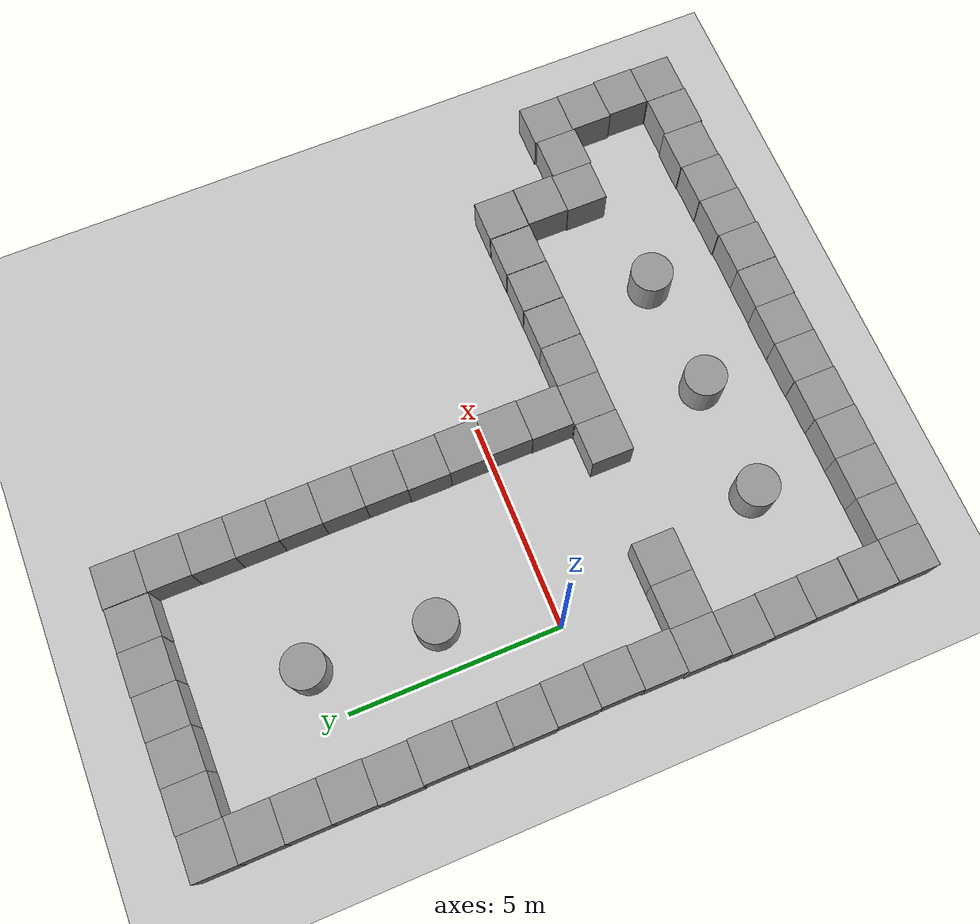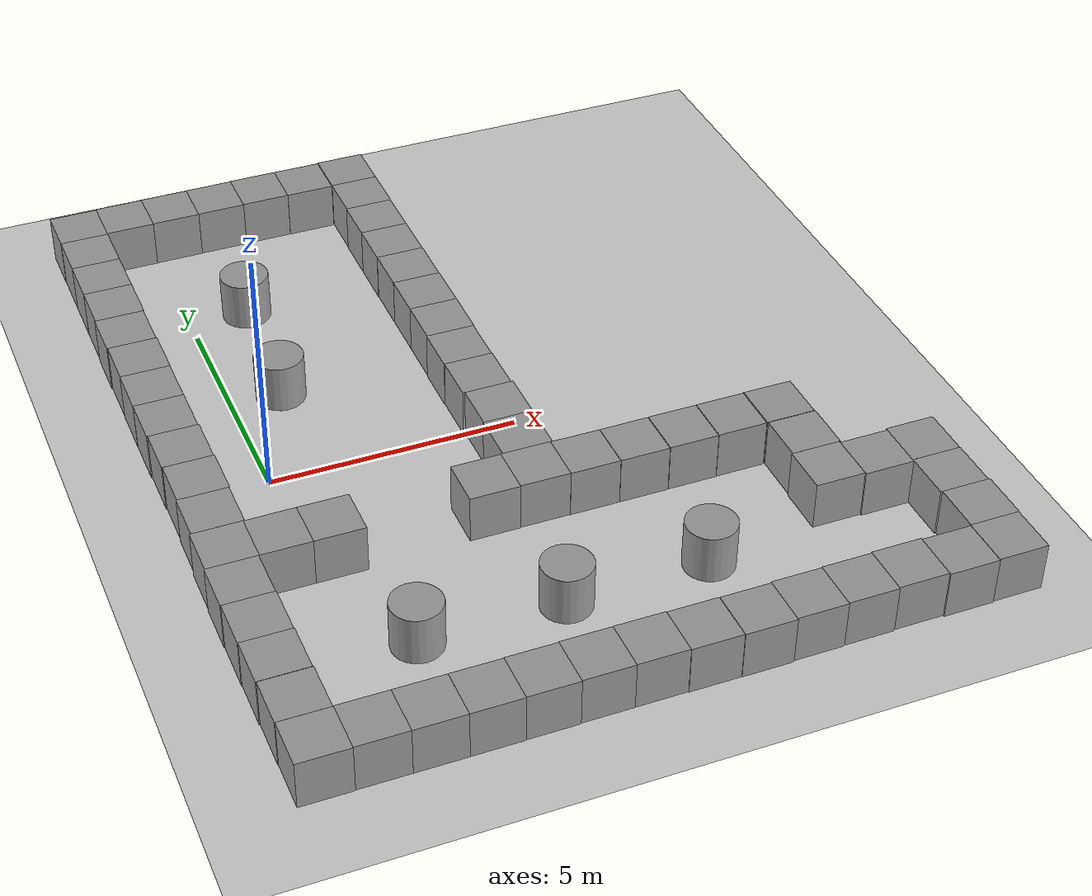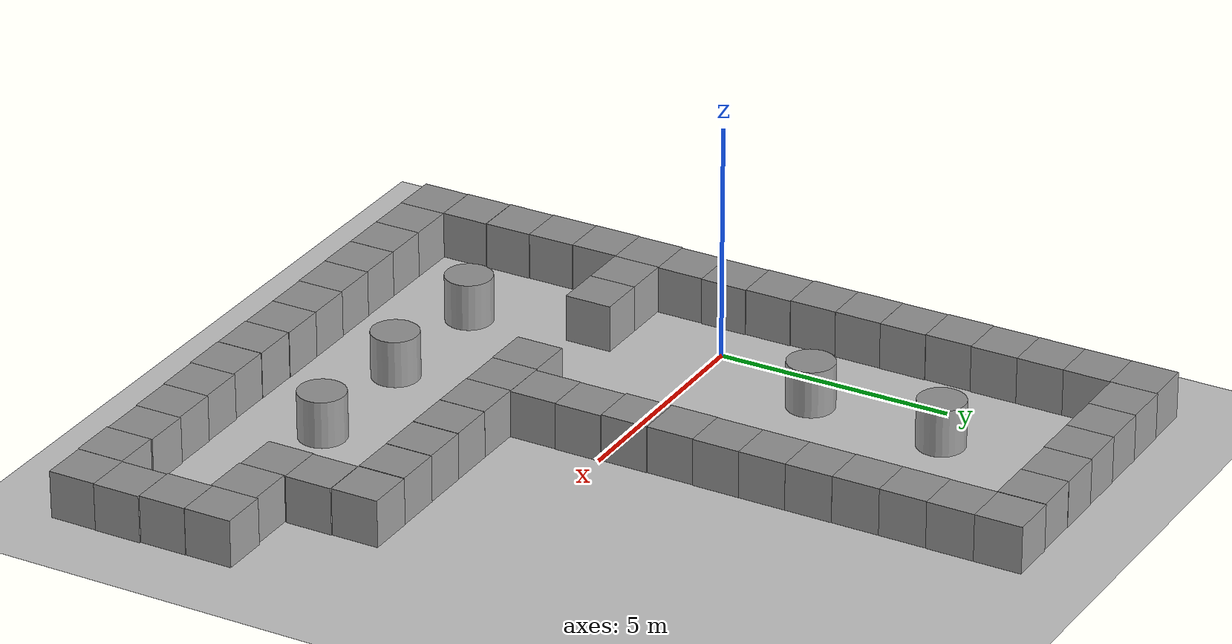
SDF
<sdf version="1.7">
 <world name="default">
  <light name="sun" type="directional">
   <pose>0 0 10 0 -0 0</pose>
   <diffuse>0.8 0.8 0.8 1</diffuse>
   <specular>0.2 0.2 0.2 1</specular>
   <attenuation>
    <range>1000</range>
    <constant>0.9</constant>
    <linear>0.01</linear>
    <quadratic>0.001</quadratic>
   </attenuation>
   <direction>-0.5 0.1 -0.9</direction>
   <spot><inner_angle>0</inner_angle><outer_angle>0</outer_angle><falloff>0</falloff></spot>
  </light>
  <model name="ground_plane">
   <static>1</static>
   <link name="link">
    <collision name="collision">
     <geometry><plane><normal>0 0 1</normal><size>100 100</size></plane></geometry>
     <surface>
      <contact><collide_bitmask>65535</collide_bitmask></contact>
      <friction><ode><mu>100</mu><mu2>50</mu2></ode></friction>
     </surface>
    </collision>
    <visual name="visual">
     <cast_shadows>0</cast_shadows>
     <geometry><plane><normal>0 0 1</normal><size>100 100</size></plane></geometry>
     <material>
      <script><uri>file://media/materials/scripts/gazebo.material</uri><name>Gazebo/Grey</name></script>
     </material>
    </visual>
   </link>
  </model>
  <gravity>0 0 -9.8</gravity>
  <magnetic_field>6e-06 2.3e-05 -4.2e-05</magnetic_field>
  <atmosphere type="adiabatic"/>
  <physics type="ode">
   <max_step_size>0.001</max_step_size>
   <real_time_factor>1</real_time_factor>
   <real_time_update_rate>1000</real_time_update_rate>
  </physics>
  <scene><ambient>0.4 0.4 0.4 1</ambient><background>0.7 0.7 0.7 1</background><shadows>1</shadows></scene>
  <audio><device>default</device></audio>
  <spherical_coordinates>
   <surface_model>EARTH_WGS84</surface_model>
   <latitude_deg>0</latitude_deg>
   <longitude_deg>0</longitude_deg>
   <elevation>0</elevation>
   <heading_deg>0</heading_deg>
  </spherical_coordinates>
  <model name="unit_box">
   <pose>-1.51063 -0.521096 0.5 0 -0 0.000656</pose>
   <link name="link">
    <inertial>
     <mass>1</mass>
     <inertia>
      <ixx>0.166667</ixx>
      <ixy>0</ixy>
      <ixz>0</ixz>
      <iyy>0.166667</iyy>
      <iyz>0</iyz>
      <izz>0.166667</izz>
     </inertia>
    </inertial>
    <collision name="collision"><geometry><box><size>1 1 1</size></box></geometry></collision>
    <visual name="visual">
     <geometry><box><size>1 1 1</size></box></geometry>
     <material>
      <script><name>Gazebo/Grey</name><uri>file://media/materials/scripts/gazebo.material</uri></script>
     </material>
    </visual>
   </link>
  </model>
  <model name="unit_box_0">
   <pose>-1.52804 0.478997 0.5 -1e-06 -0 0.000483</pose>
   <link name="link">
    <inertial>
     <mass>1</mass>
     <inertia>
      <ixx>0.166667</ixx>
      <ixy>0</ixy>
      <ixz>0</ixz>
      <iyy>0.166667</iyy>
      <iyz>0</iyz>
      <izz>0.166667</izz>
     </inertia>
    </inertial>
    <collision name="collision"><geometry><box><size>1 1 1</size></box></geometry></collision>
    <visual name="visual">
     <geometry><box><size>1 1 1</size></box></geometry>
     <material>
      <script><name>Gazebo/Grey</name><uri>file://media/materials/scripts/gazebo.material</uri></script>
     </material>
    </visual>
   </link>
  </model>
  <model name="unit_box_0_clone">
   <pose>-1.54944 1.47899 0.5 0 -0 0.000474</pose>
   <link name="link">
    <inertial>
     <mass>1</mass>
     <inertia>
      <ixx>0.166667</ixx>
      <ixy>0</ixy>
      <ixz>0</ixz>
      <iyy>0.166667</iyy>
      <iyz>0</iyz>
      <izz>0.166667</izz>
     </inertia>
    </inertial>
    <collision name="collision"><geometry><box><size>1 1 1</size></box></geometry></collision>
    <visual name="visual">
     <geometry><box><size>1 1 1</size></box></geometry>
     <material>
      <script><name>Gazebo/Grey</name><uri>file://media/materials/scripts/gazebo.material</uri></script>
     </material>
    </visual>
   </link>
  </model>
  <model name="unit_box_0_clone_0">
   <pose>-1.55284 2.479 0.5 -1e-06 -0 0.000463</pose>
   <link name="link">
    <inertial>
     <mass>1</mass>
     <inertia>
      <ixx>0.166667</ixx>
      <ixy>0</ixy>
      <ixz>0</ixz>
      <iyy>0.166667</iyy>
      <iyz>0</iyz>
      <izz>0.166667</izz>
     </inertia>
    </inertial>
    <collision name="collision"><geometry><box><size>1 1 1</size></box></geometry></collision>
    <visual name="visual">
     <geometry><box><size>1 1 1</size></box></geometry>
     <material>
      <script><name>Gazebo/Grey</name><uri>file://media/materials/scripts/gazebo.material</uri></script>
     </material>
    </visual>
   </link>
  </model>
  <model name="unit_box_0_clone_1">
   <pose>-1.54624 3.47911 0.5 0 -0 0.000237</pose>
   <link name="link">
    <inertial>
     <mass>1</mass>
     <inertia>
      <ixx>0.166667</ixx>
      <ixy>0</ixy>
      <ixz>0</ixz>
      <iyy>0.166667</iyy>
      <iyz>0</iyz>
      <izz>0.166667</izz>
     </inertia>
    </inertial>
    <collision name="collision"><geometry><box><size>1 1 1</size></box></geometry></collision>
    <visual name="visual">
     <geometry><box><size>1 1 1</size></box></geometry>
     <material>
      <script><name>Gazebo/Grey</name><uri>file://media/materials/scripts/gazebo.material</uri></script>
     </material>
    </visual>
   </link>
  </model>
  <model name="unit_box_0_clone_2">
   <pose>-1.5633 4.47916 0.5 0 -0 0.000141</pose>
   <link name="link">
    <inertial>
     <mass>1</mass>
     <inertia>
      <ixx>0.166667</ixx>
      <ixy>0</ixy>
      <ixz>0</ixz>
      <iyy>0.166667</iyy>
      <iyz>0</iyz>
      <izz>0.166667</izz>
     </inertia>
    </inertial>
    <collision name="collision"><geometry><box><size>1 1 1</size></box></geometry></collision>
    <visual name="visual">
     <geometry><box><size>1 1 1</size></box></geometry>
     <material>
      <script><name>Gazebo/Grey</name><uri>file://media/materials/scripts/gazebo.material</uri></script>
     </material>
    </visual>
   </link>
  </model>
  <model name="unit_box_0_clone_3">
   <pose>-1.54839 5.47918 0.5 0 -0 0.000113</pose>
   <link name="link">
    <inertial>
     <mass>1</mass>
     <inertia>
      <ixx>0.166667</ixx>
      <ixy>0</ixy>
      <ixz>0</ixz>
      <iyy>0.166667</iyy>
      <iyz>0</iyz>
      <izz>0.166667</izz>
     </inertia>
    </inertial>
    <collision name="collision"><geometry><box><size>1 1 1</size></box></geometry></collision>
    <visual name="visual">
     <geometry><box><size>1 1 1</size></box></geometry>
     <material>
      <script><name>Gazebo/Grey</name><uri>file://media/materials/scripts/gazebo.material</uri></script>
     </material>
    </visual>
   </link>
  </model>
  <model name="unit_box_0_clone_4">
   <pose>-1.54942 6.47919 0.5 0 -0 0.000113</pose>
   <link name="link">
    <inertial>
     <mass>1</mass>
     <inertia>
      <ixx>0.166667</ixx>
      <ixy>0</ixy>
      <ixz>0</ixz>
      <iyy>0.166667</iyy>
      <iyz>0</iyz>
      <izz>0.166667</izz>
     </inertia>
    </inertial>
    <collision name="collision"><geometry><box><size>1 1 1</size></box></geometry></collision>
    <visual name="visual">
     <geometry><box><size>1 1 1</size></box></geometry>
     <material>
      <script><name>Gazebo/Grey</name><uri>file://media/materials/scripts/gazebo.material</uri></script>
     </material>
    </visual>
   </link>
  </model>
  <model name="unit_box_0_clone_5">
   <pose>-1.54977 7.47919 0.5 0 -0 0.000113</pose>
   <link name="link">
    <inertial>
     <mass>1</mass>
     <inertia>
      <ixx>0.166667</ixx>
      <ixy>0</ixy>
      <ixz>0</ixz>
      <iyy>0.166667</iyy>
      <iyz>0</iyz>
      <izz>0.166667</izz>
     </inertia>
    </inertial>
    <collision name="collision"><geometry><box><size>1 1 1</size></box></geometry></collision>
    <visual name="visual">
     <geometry><box><size>1 1 1</size></box></geometry>
     <material>
      <script><name>Gazebo/Grey</name><uri>file://media/materials/scripts/gazebo.material</uri></script>
     </material>
    </visual>
   </link>
  </model>
  <model name="unit_box_0_clone_6">
   <pose>-1.55449 8.47919 0.5 0 -0 0.000114</pose>
   <link name="link">
    <inertial>
     <mass>1</mass>
     <inertia>
      <ixx>0.166667</ixx>
      <ixy>0</ixy>
      <ixz>0</ixz>
      <iyy>0.166667</iyy>
      <iyz>0</iyz>
      <izz>0.166667</izz>
     </inertia>
    </inertial>
    <collision name="collision"><geometry><box><size>1 1 1</size></box></geometry></collision>
    <visual name="visual">
     <geometry><box><size>1 1 1</size></box></geometry>
     <material>
      <script><name>Gazebo/Grey</name><uri>file://media/materials/scripts/gazebo.material</uri></script>
     </material>
    </visual>
   </link>
  </model>
  <model name="unit_box_0_clone_7">
   <pose>-1.52709 -1.52111 0.5 0 -0 0.00066</pose>
   <link name="link">
    <inertial>
     <mass>1</mass>
     <inertia>
      <ixx>0.166667</ixx>
      <ixy>0</ixy>
      <ixz>0</ixz>
      <iyy>0.166667</iyy>
      <iyz>0</iyz>
      <izz>0.166667</izz>
     </inertia>
    </inertial>
    <collision name="collision"><geometry><box><size>1 1 1</size></box></geometry></collision>
    <visual name="visual">
     <geometry><box><size>1 1 1</size></box></geometry>
     <material>
      <script><name>Gazebo/Grey</name><uri>file://media/materials/scripts/gazebo.material</uri></script>
     </material>
    </visual>
   </link>
  </model>
  <model name="unit_box_0_clone_8">
   <pose>-1.55636 -2.52117 0.5 0 -0 0.000707</pose>
   <link name="link">
    <inertial>
     <mass>1</mass>
     <inertia>
      <ixx>0.166667</ixx>
      <ixy>0</ixy>
      <ixz>0</ixz>
      <iyy>0.166667</iyy>
      <iyz>0</iyz>
      <izz>0.166667</izz>
     </inertia>
    </inertial>
    <collision name="collision"><geometry><box><size>1 1 1</size></box></geometry></collision>
    <visual name="visual">
     <geometry><box><size>1 1 1</size></box></geometry>
     <material>
      <script><name>Gazebo/Grey</name><uri>file://media/materials/scripts/gazebo.material</uri></script>
     </material>
    </visual>
   </link>
  </model>
  <model name="unit_box_0_clone_9">
   <pose>-0.55631 -2.5225 0.5 0 -0 0.000604</pose>
   <link name="link">
    <inertial>
     <mass>1</mass>
     <inertia>
      <ixx>0.166667</ixx>
      <ixy>0</ixy>
      <ixz>0</ixz>
      <iyy>0.166667</iyy>
      <iyz>0</iyz>
      <izz>0.166667</izz>
     </inertia>
    </inertial>
    <collision name="collision"><geometry><box><size>1 1 1</size></box></geometry></collision>
    <visual name="visual">
     <geometry><box><size>1 1 1</size></box></geometry>
     <material>
      <script><name>Gazebo/Grey</name><uri>file://media/materials/scripts/gazebo.material</uri></script>
     </material>
    </visual>
   </link>
  </model>
  <model name="unit_box_0_clone_10">
   <pose>0.443777 -2.52225 0.5 0 -0 0.000446</pose>
   <link name="link">
    <inertial>
     <mass>1</mass>
     <inertia>
      <ixx>0.166667</ixx>
      <ixy>0</ixy>
      <ixz>0</ixz>
      <iyy>0.166667</iyy>
      <iyz>0</iyz>
      <izz>0.166667</izz>
     </inertia>
    </inertial>
    <collision name="collision"><geometry><box><size>1 1 1</size></box></geometry></collision>
    <visual name="visual">
     <geometry><box><size>1 1 1</size></box></geometry>
     <material>
      <script><name>Gazebo/Grey</name><uri>file://media/materials/scripts/gazebo.material</uri></script>
     </material>
    </visual>
   </link>
  </model>
  <model name="unit_box_0_clone_12">
   <pose>-0.554173 8.49752 0.5 0 0 -0.000253</pose>
   <link name="link">
    <inertial>
     <mass>1</mass>
     <inertia>
      <ixx>0.166667</ixx>
      <ixy>0</ixy>
      <ixz>0</ixz>
      <iyy>0.166667</iyy>
      <iyz>0</iyz>
      <izz>0.166667</izz>
     </inertia>
    </inertial>
    <collision name="collision"><geometry><box><size>1 1 1</size></box></geometry></collision>
    <visual name="visual">
     <geometry><box><size>1 1 1</size></box></geometry>
     <material>
      <script><name>Gazebo/Grey</name><uri>file://media/materials/scripts/gazebo.material</uri></script>
     </material>
    </visual>
   </link>
  </model>
  <model name="unit_box_0_clone_13">
   <pose>0.445836 8.50452 0.5 -0 -0 -0.000243</pose>
   <link name="link">
    <inertial>
     <mass>1</mass>
     <inertia>
      <ixx>0.166667</ixx>
      <ixy>0</ixy>
      <ixz>0</ixz>
      <iyy>0.166667</iyy>
      <iyz>0</iyz>
      <izz>0.166667</izz>
     </inertia>
    </inertial>
    <collision name="collision"><geometry><box><size>1 1 1</size></box></geometry></collision>
    <visual name="visual">
     <geometry><box><size>1 1 1</size></box></geometry>
     <material>
      <script><name>Gazebo/Grey</name><uri>file://media/materials/scripts/gazebo.material</uri></script>
     </material>
    </visual>
   </link>
  </model>
  <model name="unit_box_0_clone_14">
   <pose>1.44587 8.51201 0.5 0 -0 -0.000181</pose>
   <link name="link">
    <inertial>
     <mass>1</mass>
     <inertia>
      <ixx>0.166667</ixx>
      <ixy>0</ixy>
      <ixz>0</ixz>
      <iyy>0.166667</iyy>
      <iyz>0</iyz>
      <izz>0.166667</izz>
     </inertia>
    </inertial>
    <collision name="collision"><geometry><box><size>1 1 1</size></box></geometry></collision>
    <visual name="visual">
     <geometry><box><size>1 1 1</size></box></geometry>
     <material>
      <script><name>Gazebo/Grey</name><uri>file://media/materials/scripts/gazebo.material</uri></script>
     </material>
    </visual>
   </link>
  </model>
  <model name="unit_box_0_clone_15">
   <pose>2.4459 8.52442 0.5 -0 -0 -0.000134</pose>
   <link name="link">
    <inertial>
     <mass>1</mass>
     <inertia>
      <ixx>0.166667</ixx>
      <ixy>0</ixy>
      <ixz>0</ixz>
      <iyy>0.166667</iyy>
      <iyz>0</iyz>
      <izz>0.166667</izz>
     </inertia>
    </inertial>
    <collision name="collision"><geometry><box><size>1 1 1</size></box></geometry></collision>
    <visual name="visual">
     <geometry><box><size>1 1 1</size></box></geometry>
     <material>
      <script><name>Gazebo/Grey</name><uri>file://media/materials/scripts/gazebo.material</uri></script>
     </material>
    </visual>
   </link>
  </model>
  <model name="unit_box_0_clone_16">
   <pose>3.4459 8.51922 0.5 -0 -0 -0.000133</pose>
   <link name="link">
    <inertial>
     <mass>1</mass>
     <inertia>
      <ixx>0.166667</ixx>
      <ixy>0</ixy>
      <ixz>0</ixz>
      <iyy>0.166667</iyy>
      <iyz>0</iyz>
      <izz>0.166667</izz>
     </inertia>
    </inertial>
    <collision name="collision"><geometry><box><size>1 1 1</size></box></geometry></collision>
    <visual name="visual">
     <geometry><box><size>1 1 1</size></box></geometry>
     <material>
      <script><name>Gazebo/Grey</name><uri>file://media/materials/scripts/gazebo.material</uri></script>
     </material>
    </visual>
   </link>
  </model>
  <model name="unit_box_0_clone_17">
   <pose>4.4579 8.5377 0.5 0 -0 -0.000198</pose>
   <link name="link">
    <inertial>
     <mass>1</mass>
     <inertia>
      <ixx>0.166667</ixx>
      <ixy>0</ixy>
      <ixz>0</ixz>
      <iyy>0.166667</iyy>
      <iyz>0</iyz>
      <izz>0.166667</izz>
     </inertia>
    </inertial>
    <collision name="collision"><geometry><box><size>1 1 1</size></box></geometry></collision>
    <visual name="visual">
     <geometry><box><size>1 1 1</size></box></geometry>
     <material>
      <script><name>Gazebo/Grey</name><uri>file://media/materials/scripts/gazebo.material</uri></script>
     </material>
    </visual>
   </link>
  </model>
  <model name="unit_box_0_clone_18">
   <pose>4.45733 7.5377 0.5 0 -0 -0.000198</pose>
   <link name="link">
    <inertial>
     <mass>1</mass>
     <inertia>
      <ixx>0.166667</ixx>
      <ixy>0</ixy>
      <ixz>0</ixz>
      <iyy>0.166667</iyy>
      <iyz>0</iyz>
      <izz>0.166667</izz>
     </inertia>
    </inertial>
    <collision name="collision"><geometry><box><size>1 1 1</size></box></geometry></collision>
    <visual name="visual">
     <geometry><box><size>1 1 1</size></box></geometry>
     <material>
      <script><name>Gazebo/Grey</name><uri>file://media/materials/scripts/gazebo.material</uri></script>
     </material>
    </visual>
   </link>
  </model>
  <model name="unit_box_0_clone_19">
   <pose>4.44835 6.53769 0.5 0 0 -0.000192</pose>
   <link name="link">
    <inertial>
     <mass>1</mass>
     <inertia>
      <ixx>0.166667</ixx>
      <ixy>0</ixy>
      <ixz>0</ixz>
      <iyy>0.166667</iyy>
      <iyz>0</iyz>
      <izz>0.166667</izz>
     </inertia>
    </inertial>
    <collision name="collision"><geometry><box><size>1 1 1</size></box></geometry></collision>
    <visual name="visual">
     <geometry><box><size>1 1 1</size></box></geometry>
     <material>
      <script><name>Gazebo/Grey</name><uri>file://media/materials/scripts/gazebo.material</uri></script>
     </material>
    </visual>
   </link>
  </model>
  <model name="unit_box_0_clone_20">
   <pose>4.44732 5.53769 0.5 -0 -0 -0.000191</pose>
   <link name="link">
    <inertial>
     <mass>1</mass>
     <inertia>
      <ixx>0.166667</ixx>
      <ixy>0</ixy>
      <ixz>0</ixz>
      <iyy>0.166667</iyy>
      <iyz>0</iyz>
      <izz>0.166667</izz>
     </inertia>
    </inertial>
    <collision name="collision"><geometry><box><size>1 1 1</size></box></geometry></collision>
    <visual name="visual">
     <geometry><box><size>1 1 1</size></box></geometry>
     <material>
      <script><name>Gazebo/Grey</name><uri>file://media/materials/scripts/gazebo.material</uri></script>
     </material>
    </visual>
   </link>
  </model>
  <model name="unit_box_0_clone_21">
   <pose>4.45171 4.53767 0.499995 0 -1e-05 -0.000172</pose>
   <link name="link">
    <inertial>
     <mass>1</mass>
     <inertia>
      <ixx>0.166667</ixx>
      <ixy>0</ixy>
      <ixz>0</ixz>
      <iyy>0.166667</iyy>
      <iyz>0</iyz>
      <izz>0.166667</izz>
     </inertia>
    </inertial>
    <collision name="collision"><geometry><box><size>1 1 1</size></box></geometry></collision>
    <visual name="visual">
     <geometry><box><size>1 1 1</size></box></geometry>
     <material>
      <script><name>Gazebo/Grey</name><uri>file://media/materials/scripts/gazebo.material</uri></script>
     </material>
    </visual>
   </link>
  </model>
  <model name="unit_box_0_clone_22">
   <pose>4.45293 3.53766 0.5 -0 -0 -0.000163</pose>
   <link name="link">
    <inertial>
     <mass>1</mass>
     <inertia>
      <ixx>0.166667</ixx>
      <ixy>0</ixy>
      <ixz>0</ixz>
      <iyy>0.166667</iyy>
      <iyz>0</iyz>
      <izz>0.166667</izz>
     </inertia>
    </inertial>
    <collision name="collision"><geometry><box><size>1 1 1</size></box></geometry></collision>
    <visual name="visual">
     <geometry><box><size>1 1 1</size></box></geometry>
     <material>
      <script><name>Gazebo/Grey</name><uri>file://media/materials/scripts/gazebo.material</uri></script>
     </material>
    </visual>
   </link>
  </model>
  <model name="unit_box_0_clone_23">
   <pose>4.45259 2.53766 0.5 0 -0 -0.000163</pose>
   <link name="link">
    <inertial>
     <mass>1</mass>
     <inertia>
      <ixx>0.166667</ixx>
      <ixy>0</ixy>
      <ixz>0</ixz>
      <iyy>0.166667</iyy>
      <iyz>0</iyz>
      <izz>0.166667</izz>
     </inertia>
    </inertial>
    <collision name="collision"><geometry><box><size>1 1 1</size></box></geometry></collision>
    <visual name="visual">
     <geometry><box><size>1 1 1</size></box></geometry>
     <material>
      <script><name>Gazebo/Grey</name><uri>file://media/materials/scripts/gazebo.material</uri></script>
     </material>
    </visual>
   </link>
  </model>
  <model name="unit_box_0_clone_24">
   <pose>4.43773 1.53765 0.5 0 -0 -0.000151</pose>
   <link name="link">
    <inertial>
     <mass>1</mass>
     <inertia>
      <ixx>0.166667</ixx>
      <ixy>0</ixy>
      <ixz>0</ixz>
      <iyy>0.166667</iyy>
      <iyz>0</iyz>
      <izz>0.166667</izz>
     </inertia>
    </inertial>
    <collision name="collision"><geometry><box><size>1 1 1</size></box></geometry></collision>
    <visual name="visual">
     <geometry><box><size>1 1 1</size></box></geometry>
     <material>
      <script><name>Gazebo/Grey</name><uri>file://media/materials/scripts/gazebo.material</uri></script>
     </material>
    </visual>
   </link>
  </model>
  <model name="unit_box_0_clone_25">
   <pose>4.44624 0.537619 0.5 -0 -0 -9.8e-05</pose>
   <link name="link">
    <inertial>
     <mass>1</mass>
     <inertia>
      <ixx>0.166667</ixx>
      <ixy>0</ixy>
      <ixz>0</ixz>
      <iyy>0.166667</iyy>
      <iyz>0</iyz>
      <izz>0.166667</izz>
     </inertia>
    </inertial>
    <collision name="collision"><geometry><box><size>1 1 1</size></box></geometry></collision>
    <visual name="visual">
     <geometry><box><size>1 1 1</size></box></geometry>
     <material>
      <script><name>Gazebo/Grey</name><uri>file://media/materials/scripts/gazebo.material</uri></script>
     </material>
    </visual>
   </link>
  </model>
  <model name="unit_box_0_clone_26">
   <pose>4.48753 -0.462401 0.5 1e-06 -0 -0.000101</pose>
   <link name="link">
    <inertial>
     <mass>1</mass>
     <inertia>
      <ixx>0.166667</ixx>
      <ixy>0</ixy>
      <ixz>0</ixz>
      <iyy>0.166667</iyy>
      <iyz>0</iyz>
      <izz>0.166667</izz>
     </inertia>
    </inertial>
    <collision name="collision"><geometry><box><size>1 1 1</size></box></geometry></collision>
    <visual name="visual">
     <geometry><box><size>1 1 1</size></box></geometry>
     <material>
      <script><name>Gazebo/Grey</name><uri>file://media/materials/scripts/gazebo.material</uri></script>
     </material>
    </visual>
   </link>
  </model>
  <model name="unit_box_0_clone_27">
   <pose>4.47468 -1.46241 0.5 -0 -0 -0.000117</pose>
   <link name="link">
    <inertial>
     <mass>1</mass>
     <inertia>
      <ixx>0.166667</ixx>
      <ixy>0</ixy>
      <ixz>0</ixz>
      <iyy>0.166667</iyy>
      <iyz>0</iyz>
      <izz>0.166667</izz>
     </inertia>
    </inertial>
    <collision name="collision"><geometry><box><size>1 1 1</size></box></geometry></collision>
    <visual name="visual">
     <geometry><box><size>1 1 1</size></box></geometry>
     <material>
      <script><name>Gazebo/Grey</name><uri>file://media/materials/scripts/gazebo.material</uri></script>
     </material>
    </visual>
   </link>
  </model>
  <model name="unit_box_0_clone_11">
   <pose>4.43152 -2.46419 0.5 0 -0 -0.002456</pose>
   <link name="link">
    <inertial>
     <mass>1</mass>
     <inertia>
      <ixx>0.166667</ixx>
      <ixy>0</ixy>
      <ixz>0</ixz>
      <iyy>0.166667</iyy>
      <iyz>0</iyz>
      <izz>0.166667</izz>
     </inertia>
    </inertial>
    <collision name="collision"><geometry><box><size>1 1 1</size></box></geometry></collision>
    <visual name="visual">
     <geometry><box><size>1 1 1</size></box></geometry>
     <material>
      <script><name>Gazebo/Grey</name><uri>file://media/materials/scripts/gazebo.material</uri></script>
     </material>
    </visual>
   </link>
  </model>
  <model name="unit_box_0_clone_28">
   <pose>3.43147 -2.47368 0.5 0 -0 -0.002441</pose>
   <link name="link">
    <inertial>
     <mass>1</mass>
     <inertia>
      <ixx>0.166667</ixx>
      <ixy>0</ixy>
      <ixz>0</ixz>
      <iyy>0.166667</iyy>
      <iyz>0</iyz>
      <izz>0.166667</izz>
     </inertia>
    </inertial>
    <collision name="collision"><geometry><box><size>1 1 1</size></box></geometry></collision>
    <visual name="visual">
     <geometry><box><size>1 1 1</size></box></geometry>
     <material>
      <script><name>Gazebo/Grey</name><uri>file://media/materials/scripts/gazebo.material</uri></script>
     </material>
    </visual>
   </link>
  </model>
  <model name="unit_box_0_clone_29">
   <pose>-1.56943 -3.5212 0.499995 -0 1e-05 0.000735</pose>
   <link name="link">
    <inertial>
     <mass>1</mass>
     <inertia>
      <ixx>0.166667</ixx>
      <ixy>0</ixy>
      <ixz>0</ixz>
      <iyy>0.166667</iyy>
      <iyz>0</iyz>
      <izz>0.166667</izz>
     </inertia>
    </inertial>
    <collision name="collision"><geometry><box><size>1 1 1</size></box></geometry></collision>
    <visual name="visual">
     <geometry><box><size>1 1 1</size></box></geometry>
     <material>
      <script><name>Gazebo/Grey</name><uri>file://media/materials/scripts/gazebo.material</uri></script>
     </material>
    </visual>
   </link>
  </model>
  <model name="unit_box_0_clone_30">
   <pose>5.4315 -2.47421 0.5 -0 -0 -0.002454</pose>
   <link name="link">
    <inertial>
     <mass>1</mass>
     <inertia>
      <ixx>0.166667</ixx>
      <ixy>0</ixy>
      <ixz>0</ixz>
      <iyy>0.166667</iyy>
      <iyz>0</iyz>
      <izz>0.166667</izz>
     </inertia>
    </inertial>
    <collision name="collision"><geometry><box><size>1 1 1</size></box></geometry></collision>
    <visual name="visual">
     <geometry><box><size>1 1 1</size></box></geometry>
     <material>
      <script><name>Gazebo/Grey</name><uri>file://media/materials/scripts/gazebo.material</uri></script>
     </material>
    </visual>
   </link>
  </model>
  <model name="unit_box_0_clone_31">
   <pose>-1.55575 -4.52119 0.499995 -0 1e-05 0.000735</pose>
   <link name="link">
    <inertial>
     <mass>1</mass>
     <inertia>
      <ixx>0.166667</ixx>
      <ixy>0</ixy>
      <ixz>0</ixz>
      <iyy>0.166667</iyy>
      <iyz>0</iyz>
      <izz>0.166667</izz>
     </inertia>
    </inertial>
    <collision name="collision"><geometry><box><size>1 1 1</size></box></geometry></collision>
    <visual name="visual">
     <geometry><box><size>1 1 1</size></box></geometry>
     <material>
      <script><name>Gazebo/Grey</name><uri>file://media/materials/scripts/gazebo.material</uri></script>
     </material>
    </visual>
   </link>
  </model>
  <model name="unit_box_0_clone_32">
   <pose>-1.54416 -5.52119 0.5 0 -0 0.000735</pose>
   <link name="link">
    <inertial>
     <mass>1</mass>
     <inertia>
      <ixx>0.166667</ixx>
      <ixy>0</ixy>
      <ixz>0</ixz>
      <iyy>0.166667</iyy>
      <iyz>0</iyz>
      <izz>0.166667</izz>
     </inertia>
    </inertial>
    <collision name="collision"><geometry><box><size>1 1 1</size></box></geometry></collision>
    <visual name="visual">
     <geometry><box><size>1 1 1</size></box></geometry>
     <material>
      <script><name>Gazebo/Grey</name><uri>file://media/materials/scripts/gazebo.material</uri></script>
     </material>
    </visual>
   </link>
  </model>
  <model name="unit_box_0_clone_33">
   <pose>-1.52757 -6.52869 0.5 0 -0 0.000199</pose>
   <link name="link">
    <inertial>
     <mass>1</mass>
     <inertia>
      <ixx>0.166667</ixx>
      <ixy>0</ixy>
      <ixz>0</ixz>
      <iyy>0.166667</iyy>
      <iyz>0</iyz>
      <izz>0.166667</izz>
     </inertia>
    </inertial>
    <collision name="collision"><geometry><box><size>1 1 1</size></box></geometry></collision>
    <visual name="visual">
     <geometry><box><size>1 1 1</size></box></geometry>
     <material>
      <script><name>Gazebo/Grey</name><uri>file://media/materials/scripts/gazebo.material</uri></script>
     </material>
    </visual>
   </link>
  </model>
  <model name="unit_box_0_clone_34">
   <pose>-1.51715 -7.52972 0.5 0 0 -8.1e-05</pose>
   <link name="link">
    <inertial>
     <mass>1</mass>
     <inertia>
      <ixx>0.166667</ixx>
      <ixy>0</ixy>
      <ixz>0</ixz>
      <iyy>0.166667</iyy>
      <iyz>0</iyz>
      <izz>0.166667</izz>
     </inertia>
    </inertial>
    <collision name="collision"><geometry><box><size>1 1 1</size></box></geometry></collision>
    <visual name="visual">
     <geometry><box><size>1 1 1</size></box></geometry>
     <material>
      <script><name>Gazebo/Grey</name><uri>file://media/materials/scripts/gazebo.material</uri></script>
     </material>
    </visual>
   </link>
  </model>
  <model name="unit_box_0_clone_35">
   <pose>-0.517124 -7.52016 0.499995 -1e-05 -0 -4.1e-05</pose>
   <link name="link">
    <inertial>
     <mass>1</mass>
     <inertia>
      <ixx>0.166667</ixx>
      <ixy>0</ixy>
      <ixz>0</ixz>
      <iyy>0.166667</iyy>
      <iyz>0</iyz>
      <izz>0.166667</izz>
     </inertia>
    </inertial>
    <collision name="collision"><geometry><box><size>1 1 1</size></box></geometry></collision>
    <visual name="visual">
     <geometry><box><size>1 1 1</size></box></geometry>
     <material>
      <script><name>Gazebo/Grey</name><uri>file://media/materials/scripts/gazebo.material</uri></script>
     </material>
    </visual>
   </link>
  </model>
  <model name="unit_box_0_clone_36">
   <pose>0.482927 -7.51992 0.499995 -1e-05 0 5.4e-05</pose>
   <link name="link">
    <inertial>
     <mass>1</mass>
     <inertia>
      <ixx>0.166667</ixx>
      <ixy>0</ixy>
      <ixz>0</ixz>
      <iyy>0.166667</iyy>
      <iyz>0</iyz>
      <izz>0.166667</izz>
     </inertia>
    </inertial>
    <collision name="collision"><geometry><box><size>1 1 1</size></box></geometry></collision>
    <visual name="visual">
     <geometry><box><size>1 1 1</size></box></geometry>
     <material>
      <script><name>Gazebo/Grey</name><uri>file://media/materials/scripts/gazebo.material</uri></script>
     </material>
    </visual>
   </link>
  </model>
  <model name="unit_box_0_clone_37">
   <pose>1.48308 -7.51785 0.5 0 -0 0.000344</pose>
   <link name="link">
    <inertial>
     <mass>1</mass>
     <inertia>
      <ixx>0.166667</ixx>
      <ixy>0</ixy>
      <ixz>0</ixz>
      <iyy>0.166667</iyy>
      <iyz>0</iyz>
      <izz>0.166667</izz>
     </inertia>
    </inertial>
    <collision name="collision"><geometry><box><size>1 1 1</size></box></geometry></collision>
    <visual name="visual">
     <geometry><box><size>1 1 1</size></box></geometry>
     <material>
      <script><name>Gazebo/Grey</name><uri>file://media/materials/scripts/gazebo.material</uri></script>
     </material>
    </visual>
   </link>
  </model>
  <model name="unit_box_0_clone_38">
   <pose>2.48309 -7.50858 0.5 0 -0 0.000363</pose>
   <link name="link">
    <inertial>
     <mass>1</mass>
     <inertia>
      <ixx>0.166667</ixx>
      <ixy>0</ixy>
      <ixz>0</ixz>
      <iyy>0.166667</iyy>
      <iyz>0</iyz>
      <izz>0.166667</izz>
     </inertia>
    </inertial>
    <collision name="collision"><geometry><box><size>1 1 1</size></box></geometry></collision>
    <visual name="visual">
     <geometry><box><size>1 1 1</size></box></geometry>
     <material>
      <script><name>Gazebo/Grey</name><uri>file://media/materials/scripts/gazebo.material</uri></script>
     </material>
    </visual>
   </link>
  </model>
  <model name="unit_box_0_clone_39">
   <pose>3.48309 -7.49373 0.5 0 -0 0.000363</pose>
   <link name="link">
    <inertial>
     <mass>1</mass>
     <inertia>
      <ixx>0.166667</ixx>
      <ixy>0</ixy>
      <ixz>0</ixz>
      <iyy>0.166667</iyy>
      <iyz>0</iyz>
      <izz>0.166667</izz>
     </inertia>
    </inertial>
    <collision name="collision"><geometry><box><size>1 1 1</size></box></geometry></collision>
    <visual name="visual">
     <geometry><box><size>1 1 1</size></box></geometry>
     <material>
      <script><name>Gazebo/Grey</name><uri>file://media/materials/scripts/gazebo.material</uri></script>
     </material>
    </visual>
   </link>
  </model>
  <model name="unit_box_0_clone_40">
   <pose>4.48309 -7.48947 0.5 0 -0 0.000363</pose>
   <link name="link">
    <inertial>
     <mass>1</mass>
     <inertia>
      <ixx>0.166667</ixx>
      <ixy>0</ixy>
      <ixz>0</ixz>
      <iyy>0.166667</iyy>
      <iyz>0</iyz>
      <izz>0.166667</izz>
     </inertia>
    </inertial>
    <collision name="collision"><geometry><box><size>1 1 1</size></box></geometry></collision>
    <visual name="visual">
     <geometry><box><size>1 1 1</size></box></geometry>
     <material>
      <script><name>Gazebo/Grey</name><uri>file://media/materials/scripts/gazebo.material</uri></script>
     </material>
    </visual>
   </link>
  </model>
  <model name="unit_box_0_clone_41">
   <pose>5.4831 -7.50189 0.5 0 -0 0.000363</pose>
   <link name="link">
    <inertial>
     <mass>1</mass>
     <inertia>
      <ixx>0.166667</ixx>
      <ixy>0</ixy>
      <ixz>0</ixz>
      <iyy>0.166667</iyy>
      <iyz>0</iyz>
      <izz>0.166667</izz>
     </inertia>
    </inertial>
    <collision name="collision"><geometry><box><size>1 1 1</size></box></geometry></collision>
    <visual name="visual">
     <geometry><box><size>1 1 1</size></box></geometry>
     <material>
      <script><name>Gazebo/Grey</name><uri>file://media/materials/scripts/gazebo.material</uri></script>
     </material>
    </visual>
   </link>
  </model>
  <model name="unit_box_0_clone_42">
   <pose>6.48795 -7.50775 0.5 0 -0 0.000468</pose>
   <link name="link">
    <inertial>
     <mass>1</mass>
     <inertia>
      <ixx>0.166667</ixx>
      <ixy>0</ixy>
      <ixz>0</ixz>
      <iyy>0.166667</iyy>
      <iyz>0</iyz>
      <izz>0.166667</izz>
     </inertia>
    </inertial>
    <collision name="collision"><geometry><box><size>1 1 1</size></box></geometry></collision>
    <visual name="visual">
     <geometry><box><size>1 1 1</size></box></geometry>
     <material>
      <script><name>Gazebo/Grey</name><uri>file://media/materials/scripts/gazebo.material</uri></script>
     </material>
    </visual>
   </link>
  </model>
  <model name="unit_box_0_clone_43">
   <pose>7.48795 -7.4808 0.499995 0 1e-05 0.000453</pose>
   <link name="link">
    <inertial>
     <mass>1</mass>
     <inertia>
      <ixx>0.166667</ixx>
      <ixy>0</ixy>
      <ixz>0</ixz>
      <iyy>0.166667</iyy>
      <iyz>0</iyz>
      <izz>0.166667</izz>
     </inertia>
    </inertial>
    <collision name="collision"><geometry><box><size>1 1 1</size></box></geometry></collision>
    <visual name="visual">
     <geometry><box><size>1 1 1</size></box></geometry>
     <material>
      <script><name>Gazebo/Grey</name><uri>file://media/materials/scripts/gazebo.material</uri></script>
     </material>
    </visual>
   </link>
  </model>
  <model name="unit_box_0_clone_44">
   <pose>8.48796 -7.46429 0.499995 -1e-05 -0 0.00042</pose>
   <link name="link">
    <inertial>
     <mass>1</mass>
     <inertia>
      <ixx>0.166667</ixx>
      <ixy>0</ixy>
      <ixz>0</ixz>
      <iyy>0.166667</iyy>
      <iyz>0</iyz>
      <izz>0.166667</izz>
     </inertia>
    </inertial>
    <collision name="collision"><geometry><box><size>1 1 1</size></box></geometry></collision>
    <visual name="visual">
     <geometry><box><size>1 1 1</size></box></geometry>
     <material>
      <script><name>Gazebo/Grey</name><uri>file://media/materials/scripts/gazebo.material</uri></script>
     </material>
    </visual>
   </link>
  </model>
  <model name="unit_box_0_clone_45">
   <pose>9.48796 -7.44064 0.5 0 -0 0.000404</pose>
   <link name="link">
    <inertial>
     <mass>1</mass>
     <inertia>
      <ixx>0.166667</ixx>
      <ixy>0</ixy>
      <ixz>0</ixz>
      <iyy>0.166667</iyy>
      <iyz>0</iyz>
      <izz>0.166667</izz>
     </inertia>
    </inertial>
    <collision name="collision"><geometry><box><size>1 1 1</size></box></geometry></collision>
    <visual name="visual">
     <geometry><box><size>1 1 1</size></box></geometry>
     <material>
      <script><name>Gazebo/Grey</name><uri>file://media/materials/scripts/gazebo.material</uri></script>
     </material>
    </visual>
   </link>
  </model>
  <model name="unit_box_0_clone_46">
   <pose>6.43437 -2.47507 0.5 0 -0 0.00049</pose>
   <link name="link">
    <inertial>
     <mass>1</mass>
     <inertia>
      <ixx>0.166667</ixx>
      <ixy>0</ixy>
      <ixz>0</ixz>
      <iyy>0.166667</iyy>
      <iyz>0</iyz>
      <izz>0.166667</izz>
     </inertia>
    </inertial>
    <collision name="collision"><geometry><box><size>1 1 1</size></box></geometry></collision>
    <visual name="visual">
     <geometry><box><size>1 1 1</size></box></geometry>
     <material>
      <script><name>Gazebo/Grey</name><uri>file://media/materials/scripts/gazebo.material</uri></script>
     </material>
    </visual>
   </link>
  </model>
  <model name="unit_box_0_clone_47">
   <pose>7.44443 -2.46949 0.5 0 -0 0.00049</pose>
   <link name="link">
    <inertial>
     <mass>1</mass>
     <inertia>
      <ixx>0.166667</ixx>
      <ixy>0</ixy>
      <ixz>0</ixz>
      <iyy>0.166667</iyy>
      <iyz>0</iyz>
      <izz>0.166667</izz>
     </inertia>
    </inertial>
    <collision name="collision"><geometry><box><size>1 1 1</size></box></geometry></collision>
    <visual name="visual">
     <geometry><box><size>1 1 1</size></box></geometry>
     <material>
      <script><name>Gazebo/Grey</name><uri>file://media/materials/scripts/gazebo.material</uri></script>
     </material>
    </visual>
   </link>
  </model>
  <model name="unit_box_0_clone_48">
   <pose>8.45291 -2.46151 0.5 0 -0 0.00048</pose>
   <link name="link">
    <inertial>
     <mass>1</mass>
     <inertia>
      <ixx>0.166667</ixx>
      <ixy>0</ixy>
      <ixz>0</ixz>
      <iyy>0.166667</iyy>
      <iyz>0</iyz>
      <izz>0.166667</izz>
     </inertia>
    </inertial>
    <collision name="collision"><geometry><box><size>1 1 1</size></box></geometry></collision>
    <visual name="visual">
     <geometry><box><size>1 1 1</size></box></geometry>
     <material>
      <script><name>Gazebo/Grey</name><uri>file://media/materials/scripts/gazebo.material</uri></script>
     </material>
    </visual>
   </link>
  </model>
  <model name="unit_box_0_clone_49">
   <pose>9.46748 -2.45181 0.5 0 -0 0.000479</pose>
   <link name="link">
    <inertial>
     <mass>1</mass>
     <inertia>
      <ixx>0.166667</ixx>
      <ixy>0</ixy>
      <ixz>0</ixz>
      <iyy>0.166667</iyy>
      <iyz>0</iyz>
      <izz>0.166667</izz>
     </inertia>
    </inertial>
    <collision name="collision"><geometry><box><size>1 1 1</size></box></geometry></collision>
    <visual name="visual">
     <geometry><box><size>1 1 1</size></box></geometry>
     <material>
      <script><name>Gazebo/Grey</name><uri>file://media/materials/scripts/gazebo.material</uri></script>
     </material>
    </visual>
   </link>
  </model>
  <model name="unit_box_0_clone_50">
   <pose>9.48298 -3.46205 0.5 0 -0 -0.000309</pose>
   <link name="link">
    <inertial>
     <mass>1</mass>
     <inertia>
      <ixx>0.166667</ixx>
      <ixy>0</ixy>
      <ixz>0</ixz>
      <iyy>0.166667</iyy>
      <iyz>0</iyz>
      <izz>0.166667</izz>
     </inertia>
    </inertial>
    <collision name="collision"><geometry><box><size>1 1 1</size></box></geometry></collision>
    <visual name="visual">
     <geometry><box><size>1 1 1</size></box></geometry>
     <material>
      <script><name>Gazebo/Grey</name><uri>file://media/materials/scripts/gazebo.material</uri></script>
     </material>
    </visual>
   </link>
  </model>
  <model name="unit_box_0_clone_51">
   <pose>9.45891 -4.46234 0.5 0 -0 0.000258</pose>
   <link name="link">
    <inertial>
     <mass>1</mass>
     <inertia>
      <ixx>0.166667</ixx>
      <ixy>0</ixy>
      <ixz>0</ixz>
      <iyy>0.166667</iyy>
      <iyz>0</iyz>
      <izz>0.166667</izz>
     </inertia>
    </inertial>
    <collision name="collision"><geometry><box><size>1 1 1</size></box></geometry></collision>
    <visual name="visual">
     <geometry><box><size>1 1 1</size></box></geometry>
     <material>
      <script><name>Gazebo/Grey</name><uri>file://media/materials/scripts/gazebo.material</uri></script>
     </material>
    </visual>
   </link>
  </model>
  <model name="unit_box_0_clone_52">
   <pose>10.488 -7.47045 0.499995 1e-05 -0 0.000341</pose>
   <link name="link">
    <inertial>
     <mass>1</mass>
     <inertia>
      <ixx>0.166667</ixx>
      <ixy>0</ixy>
      <ixz>0</ixz>
      <iyy>0.166667</iyy>
      <iyz>0</iyz>
      <izz>0.166667</izz>
     </inertia>
    </inertial>
    <collision name="collision"><geometry><box><size>1 1 1</size></box></geometry></collision>
    <visual name="visual">
     <geometry><box><size>1 1 1</size></box></geometry>
     <material>
      <script><name>Gazebo/Grey</name><uri>file://media/materials/scripts/gazebo.material</uri></script>
     </material>
    </visual>
   </link>
  </model>
  <model name="unit_box_0_clone_53">
   <pose>10.4591 -4.49463 0.499995 1e-05 0 0.000522</pose>
   <link name="link">
    <inertial>
     <mass>1</mass>
     <inertia>
      <ixx>0.166667</ixx>
      <ixy>0</ixy>
      <ixz>0</ixz>
      <iyy>0.166667</iyy>
      <iyz>0</iyz>
      <izz>0.166667</izz>
     </inertia>
    </inertial>
    <collision name="collision"><geometry><box><size>1 1 1</size></box></geometry></collision>
    <visual name="visual">
     <geometry><box><size>1 1 1</size></box></geometry>
     <material>
      <script><name>Gazebo/Grey</name><uri>file://media/materials/scripts/gazebo.material</uri></script>
     </material>
    </visual>
   </link>
  </model>
  <model name="unit_box_0_clone_54">
   <pose>11.4592 -4.44948 0.499995 1e-05 -0 0.00084</pose>
   <link name="link">
    <inertial>
     <mass>1</mass>
     <inertia>
      <ixx>0.166667</ixx>
      <ixy>0</ixy>
      <ixz>0</ixz>
      <iyy>0.166667</iyy>
      <iyz>0</iyz>
      <izz>0.166667</izz>
     </inertia>
    </inertial>
    <collision name="collision"><geometry><box><size>1 1 1</size></box></geometry></collision>
    <visual name="visual">
     <geometry><box><size>1 1 1</size></box></geometry>
     <material>
      <script><name>Gazebo/Grey</name><uri>file://media/materials/scripts/gazebo.material</uri></script>
     </material>
    </visual>
   </link>
  </model>
  <model name="unit_box_0_clone_55">
   <pose>11.4671 -5.44968 0.5 0 -0 0.001232</pose>
   <link name="link">
    <inertial>
     <mass>1</mass>
     <inertia>
      <ixx>0.166667</ixx>
      <ixy>0</ixy>
      <ixz>0</ixz>
      <iyy>0.166667</iyy>
      <iyz>0</iyz>
      <izz>0.166667</izz>
     </inertia>
    </inertial>
    <collision name="collision"><geometry><box><size>1 1 1</size></box></geometry></collision>
    <visual name="visual">
     <geometry><box><size>1 1 1</size></box></geometry>
     <material>
      <script><name>Gazebo/Grey</name><uri>file://media/materials/scripts/gazebo.material</uri></script>
     </material>
    </visual>
   </link>
  </model>
  <model name="unit_box_0_clone_56">
   <pose>11.5015 -6.44965 0.5 0 -0 0.001231</pose>
   <link name="link">
    <inertial>
     <mass>1</mass>
     <inertia>
      <ixx>0.166667</ixx>
      <ixy>0</ixy>
      <ixz>0</ixz>
      <iyy>0.166667</iyy>
      <iyz>0</iyz>
      <izz>0.166667</izz>
     </inertia>
    </inertial>
    <collision name="collision"><geometry><box><size>1 1 1</size></box></geometry></collision>
    <visual name="visual">
     <geometry><box><size>1 1 1</size></box></geometry>
     <material>
      <script><name>Gazebo/Grey</name><uri>file://media/materials/scripts/gazebo.material</uri></script>
     </material>
    </visual>
   </link>
  </model>
  <model name="unit_box_0_clone_57">
   <pose>11.4902 -7.44966 0.5 0 -0 0.001232</pose>
   <link name="link">
    <inertial>
     <mass>1</mass>
     <inertia>
      <ixx>0.166667</ixx>
      <ixy>0</ixy>
      <ixz>0</ixz>
      <iyy>0.166667</iyy>
      <iyz>0</iyz>
      <izz>0.166667</izz>
     </inertia>
    </inertial>
    <collision name="collision"><geometry><box><size>1 1 1</size></box></geometry></collision>
    <visual name="visual">
     <geometry><box><size>1 1 1</size></box></geometry>
     <material>
      <script><name>Gazebo/Grey</name><uri>file://media/materials/scripts/gazebo.material</uri></script>
     </material>
    </visual>
   </link>
  </model>
  <model name="unit_cylinder">
   <pose>1.18972 5.46452 0.499998 3e-06 -4e-06 0</pose>
   <link name="link">
    <inertial>
     <mass>1</mass>
     <inertia><ixx>0.145833</ixx><ixy>0</ixy><ixz>0</ixz><iyy>0.145833</iyy><iyz>0</iyz><izz>0.125</izz></inertia>
    </inertial>
    <collision name="collision">
     <geometry><cylinder><radius>0.5</radius><length>1</length></cylinder></geometry>
    </collision>
    <visual name="visual">
     <geometry><cylinder><radius>0.5</radius><length>1</length></cylinder></geometry>
     <material>
      <script><name>Gazebo/Grey</name><uri>file://media/materials/scripts/gazebo.material</uri></script>
     </material>
    </visual>
   </link>
  </model>
  <model name="unit_cylinder_clone">
   <pose>1.01649 2.52526 0.499998 3e-06 4e-06 -0</pose>
   <link name="link">
    <inertial>
     <mass>1</mass>
     <inertia><ixx>0.145833</ixx><ixy>0</ixy><ixz>0</ixz><iyy>0.145833</iyy><iyz>0</iyz><izz>0.125</izz></inertia>
    </inertial>
    <collision name="collision">
     <geometry><cylinder><radius>0.5</radius><length>1</length></cylinder></geometry>
    </collision>
    <visual name="visual">
     <geometry><cylinder><radius>0.5</radius><length>1</length></cylinder></geometry>
     <material>
      <script><name>Gazebo/Grey</name><uri>file://media/materials/scripts/gazebo.material</uri></script>
     </material>
    </visual>
   </link>
  </model>
  <model name="unit_cylinder_clone_1">
   <pose>1.09757 -5.17478 0.499997 3e-06 4e-06 -0</pose>
   <link name="link">
    <inertial>
     <mass>1</mass>
     <inertia><ixx>0.145833</ixx><ixy>0</ixy><ixz>0</ixz><iyy>0.145833</iyy><iyz>0</iyz><izz>0.125</izz></inertia>
    </inertial>
    <collision name="collision">
     <geometry><cylinder><radius>0.5</radius><length>1</length></cylinder></geometry>
    </collision>
    <visual name="visual">
     <geometry><cylinder><radius>0.5</radius><length>1</length></cylinder></geometry>
     <material>
      <script><name>Gazebo/Grey</name><uri>file://media/materials/scripts/gazebo.material</uri></script>
     </material>
    </visual>
   </link>
  </model>
  <model name="unit_cylinder_clone_2">
   <pose>3.9015 -5.20891 0.499997 3e-06 4e-06 -0</pose>
   <link name="link">
    <inertial>
     <mass>1</mass>
     <inertia><ixx>0.145833</ixx><ixy>0</ixy><ixz>0</ixz><iyy>0.145833</iyy><iyz>0</iyz><izz>0.125</izz></inertia>
    </inertial>
    <collision name="collision">
     <geometry><cylinder><radius>0.5</radius><length>1</length></cylinder></geometry>
    </collision>
    <visual name="visual">
     <geometry><cylinder><radius>0.5</radius><length>1</length></cylinder></geometry>
     <material>
      <script><name>Gazebo/Grey</name><uri>file://media/materials/scripts/gazebo.material</uri></script>
     </material>
    </visual>
   </link>
  </model>
  <model name="unit_cylinder_clone_3">
   <pose>6.7336 -5.15467 0.499993 -3e-06 -4e-06 -0</pose>
   <link name="link">
    <inertial>
     <mass>1</mass>
     <inertia><ixx>0.145833</ixx><ixy>0</ixy><ixz>0</ixz><iyy>0.145833</iyy><iyz>0</iyz><izz>0.125</izz></inertia>
    </inertial>
    <collision name="collision">
     <geometry><cylinder><radius>0.5</radius><length>1</length></cylinder></geometry>
    </collision>
    <visual name="visual">
     <geometry><cylinder><radius>0.5</radius><length>1</length></cylinder></geometry>
     <material>
      <script><name>Gazebo/Grey</name><uri>file://media/materials/scripts/gazebo.material</uri></script>
     </material>
    </visual>
   </link>
  </model>
 </world>
</sdf>
